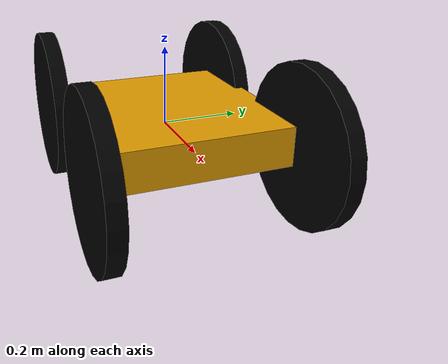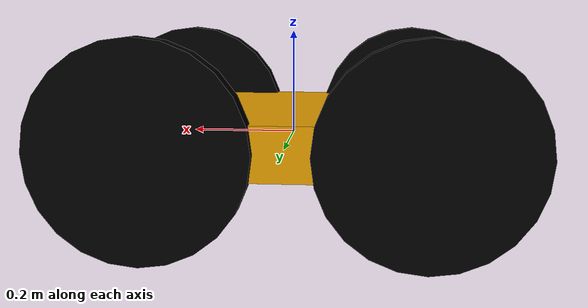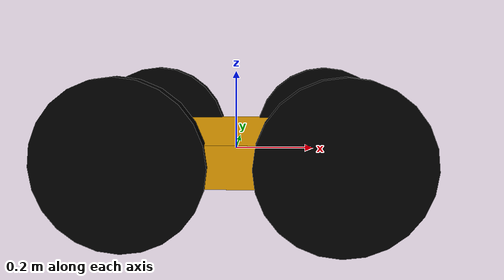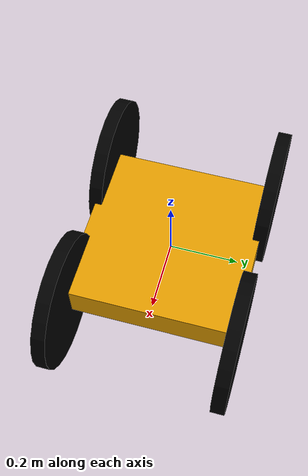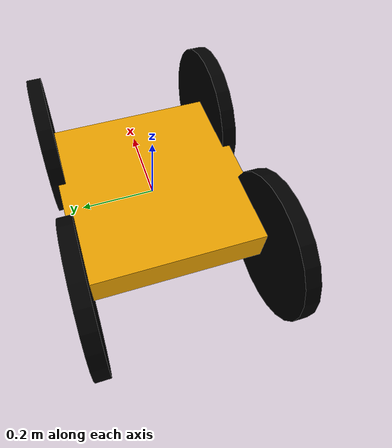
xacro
<?xml version="1.0"?>
<robot name="Diff_Drive" xmlns:xacro="http://www.ros.org/wiki/xacro">

<!-- Include materials-->

<material name="Black">
   <color rgba="0.0 0.0 0.0 1.0"/>
</material>

<material name="White">
   <color rgba="1.0 1.0 1.0 1.0"/>
</material>

<!-- constants -->
<xacro:property name="deg_to_rad" value="0.017453"/>
<xacro:property name="PI" value="3.14"/>

<!-- chassis property -->
<xacro:property name="chassis_len" value="0.5"/>
<xacro:property name="chassis_width" value="0.5"/>
<xacro:property name="chassis_height" value="0.1"/>

<!-- wheel property -->
<xacro:property name="wheel_radius" value="0.25"/>
<xacro:property name="wheel_width" value="0.04"/>
<xacro:property name="wheel_height" value="0.0"/>
<xacro:property name="wheel_mass" value=".2"/>

<xacro:macro name="cylinder_inertia" params ="m r h">
  <inertial>
   <mass value="${m}"/>
   <inertia ixx="${m*(3*r*r+h*h)/12}"  ixy="0.0" ixz="0.0"
            iyy="${m*(3*r*r+h*h)/12}"  iyz= "0.0"
            izz="${m*r*r/2}"/>
   </inertial>
</xacro:macro>

<xacro:macro name= "inertial_matrix" params="mass">
  <inertial>
    <mass value="${mass}"/>
      <inertia ixx="1.0" ixy="0.0"
               iyy="1.0" iyz="0.0"
               izz="1.0" ixz="0.0"/>
   </inertial>
 </xacro:macro>

<!--transmission block-->

<xacro:macro name="Transmission_block" params="joint_name">
   <transmission name="${joint_name}_trans">
    <type>transmission_interface/SimpleTransmission</type>
     <joint name="${joint_name}">
       <hardwareInterface>PositionJointInterface</hardwareInterface>
     </joint>
    <actuator name="${joint_name}_motor">
      <mechanicalReduction>1</mechanicalReduction>
     </actuator>
    </transmission>
 </xacro:macro>

<!-- chassis-->

 <link name="chassis">
    <visual>
      <origin rpy="0 0 0" xyz="0 0 0"/>
      <geometry>
         <box size="${chassis_len} ${chassis_width} ${chassis_height}"/>
       </geometry>
     </visual>
    <collision>
      <origin rpy="0 0 0" xyz="0 0 0"/>
      <geometry>
          <box size="${chassis_len} ${chassis_width} ${chassis_height}"/>
      </geometry>
    </collision>
   <!--xacro:inertial_matrix mass="5.0"/-->
 </link>

 <gazebo reference="chassis">
    <turnGravityOff>false</turnGravityOff>
  </gazebo>
<!-- ///////////////////      Wheels      ///////////////////////   -->

<xacro:macro name="wheel" params= "prefix suffix X Y Z">
  <link name= "${prefix}_${suffix}_wheel">
    <visual>
     <origin rpy= "1.57 0 0" xyz= "0 0 0"/>
     <geometry><cylinder length="0.04" radius= "0.2"/></geometry>
     <material name= "Black"/>
    </visual>
    <collision>
     <origin rpy= "1.57 0 0" xyz= "0 0 0"/>
     <geometry><cylinder length="${wheel_width}" radius= "${wheel_radius/5}"/></geometry>
    </collision>
  <xacro:cylinder_inertia m="${wheel_mass}" r="${wheel_radius/3}" h="${wheel_width}"/>
  </link>

 <link name= "${prefix}_${suffix}_wheel1">
    <visual>
     <origin rpy= "1.57 0 0" xyz= "0 0 0"/>
     <geometry><cylinder radius="0.055" length="0.022"/></geometry>
     <material name= "Black"/>
    </visual>
    <collision>
     <origin rpy= "1.57 0 0" xyz= "0 0 0"/>
     <geometry><cylinder radius="0.2" length="0.04"/></geometry>
    </collision>
  <xacro:cylinder_inertia m="${wheel_mass}" r="${wheel_radius}" h="${wheel_width}"/>
  </link>

  <gazebo reference ="${prefix}_${suffix}_wheel1">
     <material>Gazebo/Black</material>
     <turnGravityOff>false</turnGravityOff>
  </gazebo>

  <joint name="${prefix}_${suffix}_wheel_joint" type="continuous">
    <parent link= "chassis"/>
    <child link= "${prefix}_${suffix}_wheel"/>
    <origin xyz= "${X} ${Y} ${Z}" rpy="0 0 0"/>
    <axis xyz="0 1 0"/>
    <limit effort= "100" velocity="100"/>
    <dynamics damping="0.0" friction="0.0"/>
  </joint>

  <gazebo reference ="${prefix}_${suffix}_wheel">
    <mu1 value="200.0"/>
    <mu2 value="100.0"/>
    <kp value="10000000.0"/>
    <kd value= "1.0"/>
    <material>Gazebo/Black</material>
  </gazebo>

  <joint name="${prefix}_${suffix}_wheel_joint1" type= "fixed">
    <parent link="${prefix}_${suffix}_wheel"/>
    <child link= "${prefix}_${suffix}_wheel1"/>
    <origin xyz="0 0 0"  rpy="0 0 0"/>
  </joint>

</xacro:macro>

<xacro:wheel prefix="right" suffix="front" X="0.25" Y="0.25" Z="0"/>
<xacro:wheel prefix="right" suffix="back" X="-0.25" Y="0.25" Z="0"/>
<xacro:wheel prefix="left" suffix="front" X="-0.25" Y="-0.25" Z="0"/>
<xacro:wheel prefix="left" suffix="back" X="0.25" Y="-0.25" Z="0"/>

<!-- ros_control plugin-->

<gazebo>
  <plugin name="gazebo_ros_control" filename= "libgazebo_ros_control.so">
   <robotNamespace>/</robotNamespace>
  </plugin>
</gazebo>

</robot>
